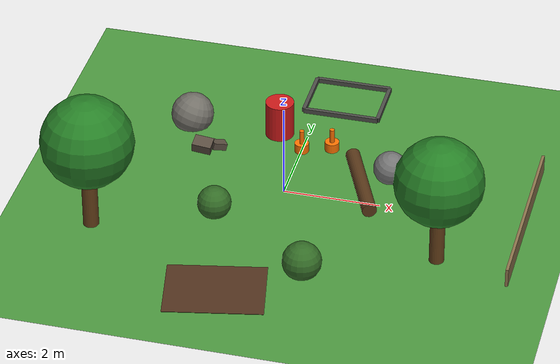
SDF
<sdf version="1.6">
 <world name="hazard_test_field">
  <include><uri>model://sun</uri></include>
  <model name="ground_plane">
   <static>true</static>
   <link name="link">
    <collision name="collision">
     <geometry><plane><normal>0 0 1</normal><size>100 100</size></plane></geometry>
     <surface><friction><ode><mu>0.9</mu><mu2>0.9</mu2></ode></friction></surface>
    </collision>
    <visual name="visual">
     <geometry><plane><normal>0 0 1</normal><size>100 100</size></plane></geometry>
     <material>
      <script><uri>file://media/materials/scripts/gazebo.material</uri><name>Gazebo/Grass</name></script>
     </material>
    </visual>
   </link>
  </model>
  <physics type="ode">
   <max_step_size>0.001</max_step_size>
   <real_time_factor>1.0</real_time_factor>
   <real_time_update_rate>1000</real_time_update_rate>
  </physics>
  <model name="rock_1">
   <static>true</static>
   <pose>2.0 1.0 0.25 0.3 0.1 0.5</pose>
   <link name="link">
    <collision name="collision"><geometry><sphere><radius>0.35</radius></sphere></geometry></collision>
    <visual name="visual">
     <geometry><sphere><radius>0.35</radius></sphere></geometry>
     <material><ambient>0.4 0.4 0.4 1</ambient><diffuse>0.45 0.45 0.45 1</diffuse></material>
    </visual>
   </link>
  </model>
  <model name="rock_2">
   <static>true</static>
   <pose>-2.5 2.0 0.2 0.1 0.4 1.0</pose>
   <link name="link">
    <collision name="collision"><geometry><sphere><radius>0.45</radius></sphere></geometry></collision>
    <visual name="visual">
     <geometry><sphere><radius>0.45</radius></sphere></geometry>
     <material><ambient>0.38 0.37 0.35 1</ambient><diffuse>0.44 0.43 0.4 1</diffuse></material>
    </visual>
   </link>
  </model>
  <model name="tree_1">
   <static>true</static>
   <pose>3.5 -1.5 0 0 0 0</pose>
   <link name="link">
    <collision name="trunk_collision">
     <pose>0 0 0.75 0 0 0</pose>
     <geometry><cylinder><radius>0.15</radius><length>1.5</length></cylinder></geometry>
    </collision>
    <visual name="trunk_visual">
     <pose>0 0 0.75 0 0 0</pose>
     <geometry><cylinder><radius>0.15</radius><length>1.5</length></cylinder></geometry>
     <material><ambient>0.35 0.2 0.1 1</ambient><diffuse>0.4 0.25 0.1 1</diffuse></material>
    </visual>
    <collision name="foliage_collision">
     <pose>0 0 1.9 0 0 0</pose>
     <geometry><sphere><radius>0.9</radius></sphere></geometry>
    </collision>
    <visual name="foliage_visual">
     <pose>0 0 1.9 0 0 0</pose>
     <geometry><sphere><radius>0.9</radius></sphere></geometry>
     <material><ambient>0.1 0.4 0.1 1</ambient><diffuse>0.15 0.5 0.15 1</diffuse></material>
    </visual>
   </link>
  </model>
  <model name="tree_2">
   <static>true</static>
   <pose>-3.5 -2.0 0 0 0 1.2</pose>
   <link name="link">
    <collision name="trunk_collision">
     <pose>0 0 0.8 0 0 0</pose>
     <geometry><cylinder><radius>0.16</radius><length>1.6</length></cylinder></geometry>
    </collision>
    <visual name="trunk_visual">
     <pose>0 0 0.8 0 0 0</pose>
     <geometry><cylinder><radius>0.16</radius><length>1.6</length></cylinder></geometry>
     <material><ambient>0.35 0.2 0.1 1</ambient><diffuse>0.4 0.25 0.1 1</diffuse></material>
    </visual>
    <collision name="foliage_collision">
     <pose>0 0 2.0 0 0 0</pose>
     <geometry><sphere><radius>0.95</radius></sphere></geometry>
    </collision>
    <visual name="foliage_visual">
     <pose>0 0 2.0 0 0 0</pose>
     <geometry><sphere><radius>0.95</radius></sphere></geometry>
     <material><ambient>0.1 0.4 0.1 1</ambient><diffuse>0.15 0.5 0.15 1</diffuse></material>
    </visual>
   </link>
  </model>
  <model name="ditch_1">
   <static>true</static>
   <pose>0.5 3.5 0 0 0 0</pose>
   <link name="link">
    <visual name="pit_floor_visual">
     <pose>0 0 -0.28 0 0 0</pose>
     <geometry><box><size>1.6 1.2 0.05</size></box></geometry>
     <material><ambient>0.25 0.18 0.1 1</ambient><diffuse>0.3 0.22 0.12 1</diffuse></material>
    </visual>
    <collision name="rim_north">
     <pose>0 0.6 0.05 0 0 0</pose>
     <geometry><box><size>1.6 0.08 0.1</size></box></geometry>
    </collision>
    <visual name="rim_north_visual">
     <pose>0 0.6 0.05 0 0 0</pose>
     <geometry><box><size>1.6 0.08 0.1</size></box></geometry>
     <material><ambient>0.3 0.3 0.28 1</ambient></material>
    </visual>
    <collision name="rim_south">
     <pose>0 -0.6 0.05 0 0 0</pose>
     <geometry><box><size>1.6 0.08 0.1</size></box></geometry>
    </collision>
    <visual name="rim_south_visual">
     <pose>0 -0.6 0.05 0 0 0</pose>
     <geometry><box><size>1.6 0.08 0.1</size></box></geometry>
     <material><ambient>0.3 0.3 0.28 1</ambient></material>
    </visual>
    <collision name="rim_east">
     <pose>0.8 0 0.05 0 0 0</pose>
     <geometry><box><size>0.08 1.2 0.1</size></box></geometry>
    </collision>
    <visual name="rim_east_visual">
     <pose>0.8 0 0.05 0 0 0</pose>
     <geometry><box><size>0.08 1.2 0.1</size></box></geometry>
     <material><ambient>0.3 0.3 0.28 1</ambient></material>
    </visual>
    <collision name="rim_west">
     <pose>-0.8 0 0.05 0 0 0</pose>
     <geometry><box><size>0.08 1.2 0.1</size></box></geometry>
    </collision>
    <visual name="rim_west_visual">
     <pose>-0.8 0 0.05 0 0 0</pose>
     <geometry><box><size>0.08 1.2 0.1</size></box></geometry>
     <material><ambient>0.3 0.3 0.28 1</ambient></material>
    </visual>
   </link>
  </model>
  <model name="bush_1">
   <static>true</static>
   <pose>1.0 -2.5 0.25 0 0 0</pose>
   <link name="link">
    <collision name="collision"><geometry><sphere><radius>0.4</radius></sphere></geometry></collision>
    <visual name="visual">
     <geometry><sphere><radius>0.4</radius></sphere></geometry>
     <material><ambient>0.15 0.35 0.1 1</ambient><diffuse>0.2 0.42 0.15 1</diffuse></material>
    </visual>
   </link>
  </model>
  <model name="bush_2">
   <static>true</static>
   <pose>-1.2 -1.0 0.22 0 0 0</pose>
   <link name="link">
    <collision name="collision"><geometry><sphere><radius>0.35</radius></sphere></geometry></collision>
    <visual name="visual">
     <geometry><sphere><radius>0.35</radius></sphere></geometry>
     <material><ambient>0.15 0.35 0.1 1</ambient><diffuse>0.2 0.42 0.15 1</diffuse></material>
    </visual>
   </link>
  </model>
  <model name="mud_patch_1">
   <static>true</static>
   <pose>-0.5 -3.5 0.01 0 0 0.2</pose>
   <link name="link">
    <visual name="visual">
     <geometry><box><size>2.0 1.5 0.01</size></box></geometry>
     <material><ambient>0.28 0.18 0.1 1</ambient><diffuse>0.32 0.2 0.12 1</diffuse></material>
    </visual>
   </link>
  </model>
  <model name="fence_line_1">
   <static>true</static>
   <pose>5.0 0.0 0.2 0 0 1.5708</pose>
   <link name="link">
    <collision name="collision"><geometry><box><size>4.0 0.06 0.4</size></box></geometry></collision>
    <visual name="visual">
     <geometry><box><size>4.0 0.06 0.4</size></box></geometry>
     <material><ambient>0.5 0.4 0.25 1</ambient><diffuse>0.55 0.45 0.3 1</diffuse></material>
    </visual>
   </link>
  </model>
  <model name="fallen_log_1">
   <static>true</static>
   <pose>1.5 0.5 0.15 1.5708 0 0.4</pose>
   <link name="link">
    <collision name="collision">
     <geometry><cylinder><radius>0.15</radius><length>2.0</length></cylinder></geometry>
    </collision>
    <visual name="visual">
     <geometry><cylinder><radius>0.15</radius><length>2.0</length></cylinder></geometry>
     <material><ambient>0.3 0.18 0.08 1</ambient><diffuse>0.35 0.22 0.1 1</diffuse></material>
    </visual>
   </link>
  </model>
  <model name="debris_pile_1">
   <static>true</static>
   <pose>-2.0 1.0 0 0 0 0</pose>
   <link name="link">
    <collision name="a_collision">
     <pose>0 0 0.15 0.2 0.1 0</pose>
     <geometry><box><size>0.4 0.3 0.2</size></box></geometry>
    </collision>
    <visual name="a_visual">
     <pose>0 0 0.15 0.2 0.1 0</pose>
     <geometry><box><size>0.4 0.3 0.2</size></box></geometry>
     <material><ambient>0.35 0.3 0.25 1</ambient></material>
    </visual>
    <collision name="b_collision">
     <pose>0.3 0.15 0.1 0 0.3 0.6</pose>
     <geometry><box><size>0.3 0.2 0.15</size></box></geometry>
    </collision>
    <visual name="b_visual">
     <pose>0.3 0.15 0.1 0 0.3 0.6</pose>
     <geometry><box><size>0.3 0.2 0.15</size></box></geometry>
     <material><ambient>0.35 0.3 0.25 1</ambient></material>
    </visual>
   </link>
  </model>
  <model name="cone_1">
   <static>true</static>
   <pose>0.0 1.5 0 0 0 0</pose>
   <link name="link">
    <collision name="base_collision">
     <pose>0 0 0.1 0 0 0</pose>
     <geometry><cylinder><radius>0.15</radius><length>0.2</length></cylinder></geometry>
    </collision>
    <visual name="base_visual">
     <pose>0 0 0.1 0 0 0</pose>
     <geometry><cylinder><radius>0.15</radius><length>0.2</length></cylinder></geometry>
     <material><ambient>0.9 0.4 0.0 1</ambient><diffuse>1.0 0.45 0.0 1</diffuse></material>
    </visual>
    <collision name="top_collision">
     <pose>0 0 0.35 0 0 0</pose>
     <geometry><cylinder><radius>0.05</radius><length>0.3</length></cylinder></geometry>
    </collision>
    <visual name="top_visual">
     <pose>0 0 0.35 0 0 0</pose>
     <geometry><cylinder><radius>0.05</radius><length>0.3</length></cylinder></geometry>
     <material><ambient>0.9 0.4 0.0 1</ambient><diffuse>1.0 0.45 0.0 1</diffuse></material>
    </visual>
   </link>
  </model>
  <model name="cone_2">
   <static>true</static>
   <pose>0.6 1.7 0 0 0 0</pose>
   <link name="link">
    <collision name="base_collision">
     <pose>0 0 0.1 0 0 0</pose>
     <geometry><cylinder><radius>0.15</radius><length>0.2</length></cylinder></geometry>
    </collision>
    <visual name="base_visual">
     <pose>0 0 0.1 0 0 0</pose>
     <geometry><cylinder><radius>0.15</radius><length>0.2</length></cylinder></geometry>
     <material><ambient>0.9 0.4 0.0 1</ambient><diffuse>1.0 0.45 0.0 1</diffuse></material>
    </visual>
    <collision name="top_collision">
     <pose>0 0 0.35 0 0 0</pose>
     <geometry><cylinder><radius>0.05</radius><length>0.3</length></cylinder></geometry>
    </collision>
    <visual name="top_visual">
     <pose>0 0 0.35 0 0 0</pose>
     <geometry><cylinder><radius>0.05</radius><length>0.3</length></cylinder></geometry>
     <material><ambient>0.9 0.4 0.0 1</ambient><diffuse>1.0 0.45 0.0 1</diffuse></material>
    </visual>
   </link>
  </model>
  <model name="barrel_1">
   <static>true</static>
   <pose>-0.6 2.0 0.4 0 0 0</pose>
   <link name="link">
    <collision name="collision">
     <geometry><cylinder><radius>0.3</radius><length>0.8</length></cylinder></geometry>
    </collision>
    <visual name="visual">
     <geometry><cylinder><radius>0.3</radius><length>0.8</length></cylinder></geometry>
     <material><ambient>0.7 0.05 0.05 1</ambient><diffuse>0.8 0.1 0.1 1</diffuse></material>
    </visual>
   </link>
  </model>
 </world>
</sdf>
